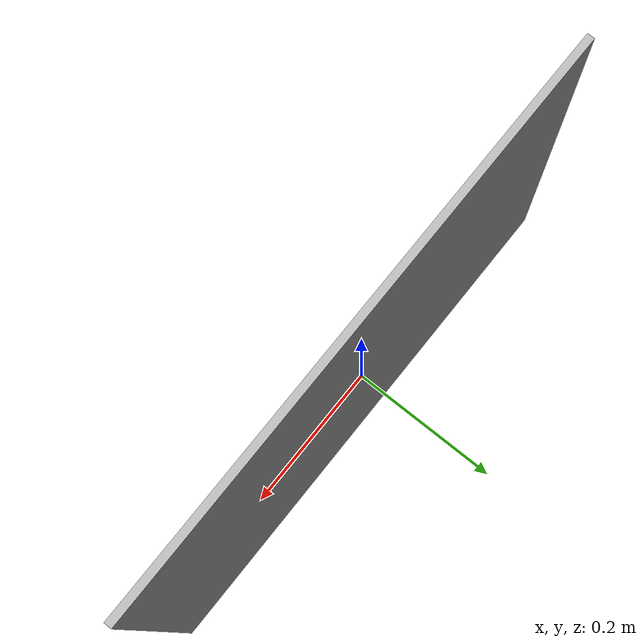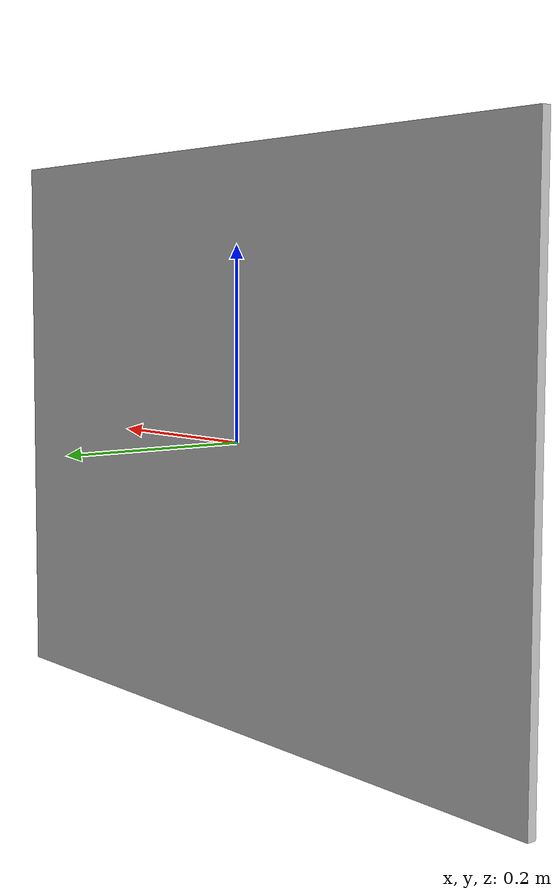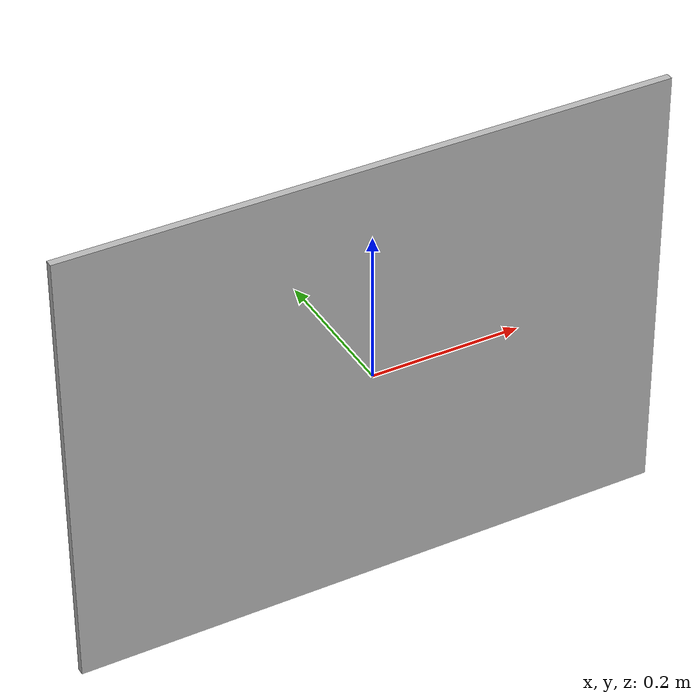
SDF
<?xml version="1.6" ?>
<sdf version="1.6">
  <model name="resized">
    <static>true</static>
    <link name="link">
      <visual name="visual">
        <pose>0 0 0 0 0 0</pose>
        <geometry>
          <mesh>
            <uri>model://viso/meshes/resized.dae</uri>
          </mesh>
        </geometry>
      </visual>
    </link>
  </model>
</sdf>
